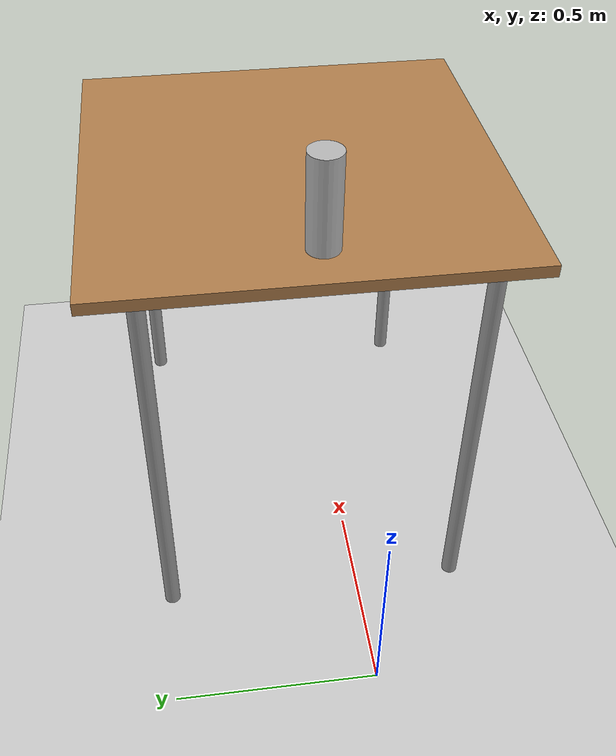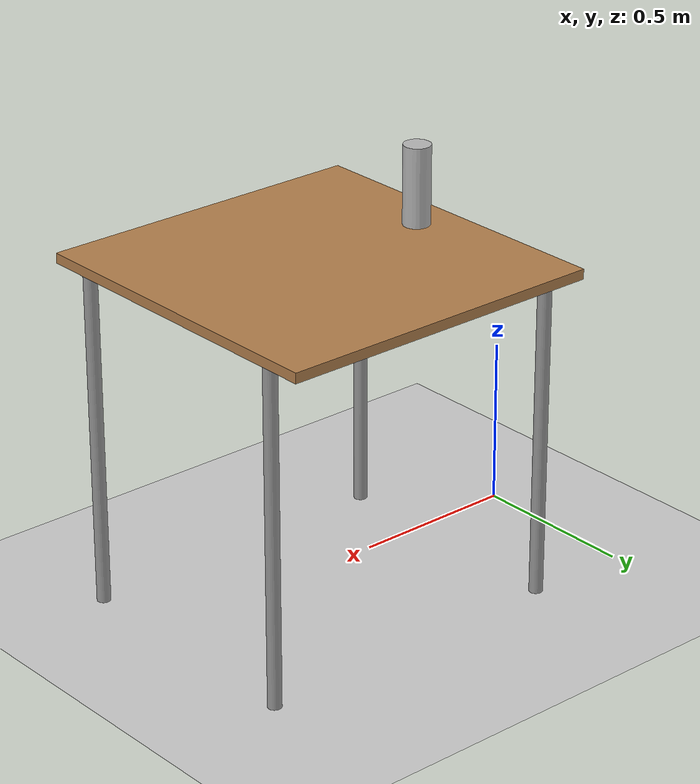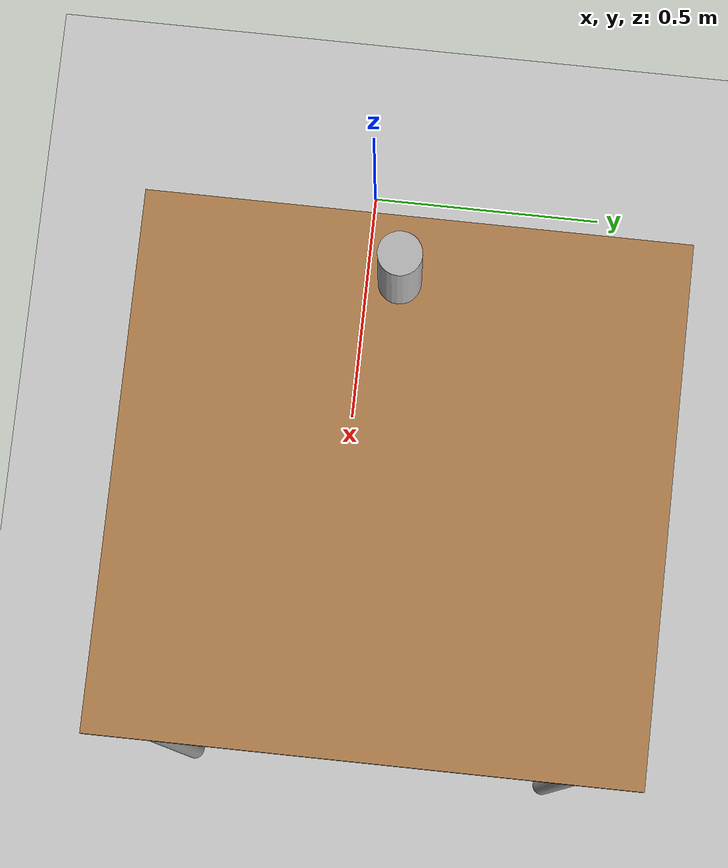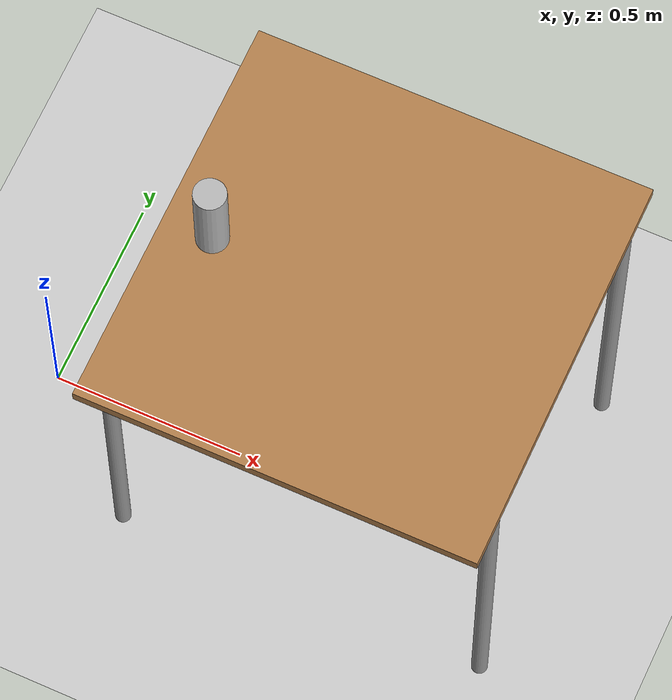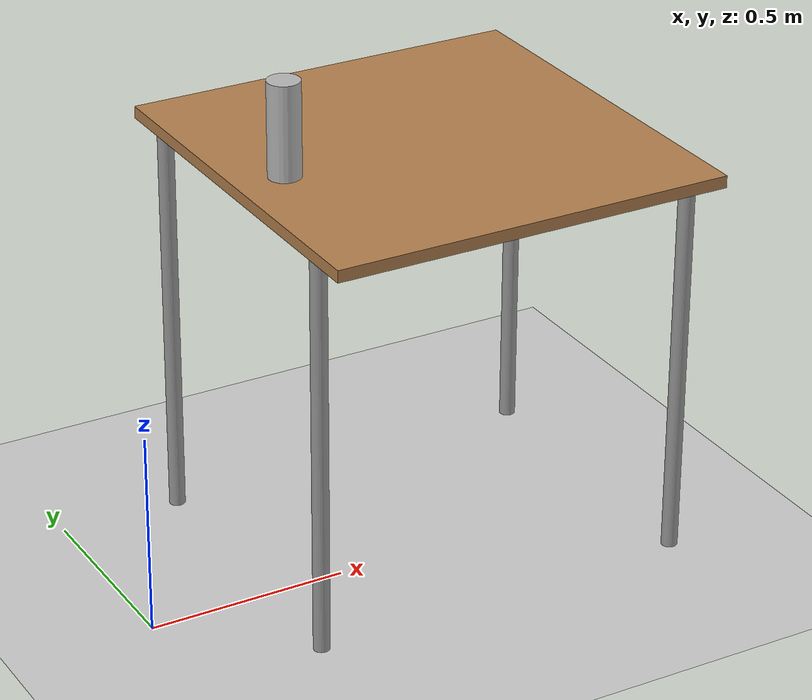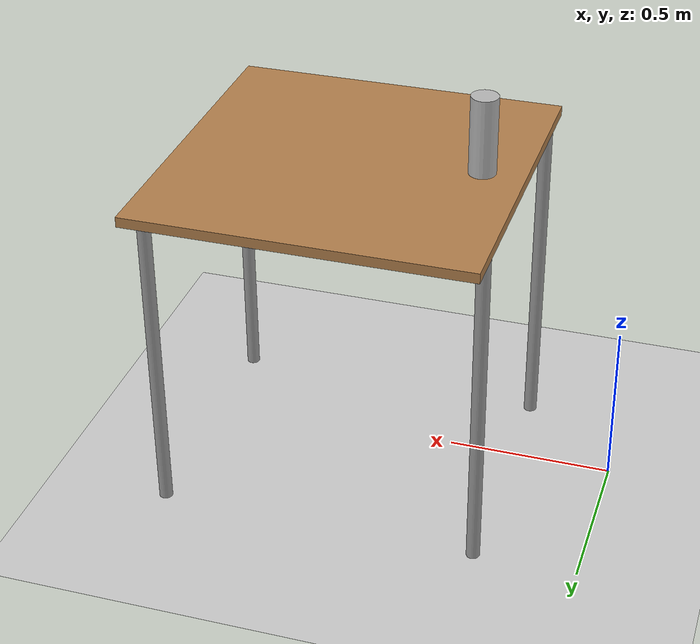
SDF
<sdf version="1.7">
 <world name="default">
  <model name="ground_plane">
   <static>1</static>
   <link name="link">
    <collision name="collision">
     <geometry><plane><normal>0 0 1</normal><size>100 100</size></plane></geometry>
     <surface><friction><ode><mu>100</mu><mu2>50</mu2></ode></friction></surface>
    </collision>
    <visual name="visual">
     <cast_shadows>0</cast_shadows>
     <geometry><plane><normal>0 0 1</normal><size>100 100</size></plane></geometry>
     <material>
      <script><uri>file://media/materials/scripts/gazebo.material</uri><name>Gazebo/Grey</name></script>
     </material>
    </visual>
    <velocity_decay><linear>0</linear><angular>0</angular></velocity_decay>
   </link>
  </model>
  <model name="table_1m">
   <static>1</static>
   <link name="link">
    <collision name="surface">
     <pose>0 0 1.01 0 -0 0</pose>
     <geometry><box><size>1 1.01 0.03</size></box></geometry>
    </collision>
    <visual name="visual1">
     <pose>0 0 1.01 0 -0 0</pose>
     <geometry><box><size>1 1.01 0.03</size></box></geometry>
     <material>
      <script><uri>file://media/materials/scripts/gazebo.material</uri><name>Gazebo/Wood</name></script>
     </material>
    </visual>
    <collision name="front_left_leg">
     <pose>0.48 0.38 0.5005 0 -0 0</pose>
     <geometry><cylinder><radius>0.02</radius><length>1.01</length></cylinder></geometry>
    </collision>
    <visual name="front_left_leg">
     <pose>0.48 0.38 0.5005 0 -0 0</pose>
     <geometry><cylinder><radius>0.02</radius><length>1.01</length></cylinder></geometry>
     <material>
      <script><uri>file://media/materials/scripts/gazebo.material</uri><name>Gazebo/Grey</name></script>
     </material>
    </visual>
    <collision name="front_right_leg">
     <pose>0.48 -0.38 0.5005 0 -0 0</pose>
     <geometry><cylinder><radius>0.02</radius><length>1.01</length></cylinder></geometry>
    </collision>
    <visual name="front_right_leg">
     <pose>0.48 -0.38 0.5005 0 -0 0</pose>
     <geometry><cylinder><radius>0.02</radius><length>1.01</length></cylinder></geometry>
     <material>
      <script><uri>file://media/materials/scripts/gazebo.material</uri><name>Gazebo/Grey</name></script>
     </material>
    </visual>
    <collision name="back_right_leg">
     <pose>-0.48 -0.38 0.5005 0 -0 0</pose>
     <geometry><cylinder><radius>0.02</radius><length>1.01</length></cylinder></geometry>
    </collision>
    <visual name="back_right_leg">
     <pose>-0.48 -0.38 0.5005 0 -0 0</pose>
     <geometry><cylinder><radius>0.02</radius><length>1.01</length></cylinder></geometry>
     <material>
      <script><uri>file://media/materials/scripts/gazebo.material</uri><name>Gazebo/Grey</name></script>
     </material>
    </visual>
    <collision name="back_left_leg">
     <pose>-0.48 0.38 0.5005 0 -0 0</pose>
     <geometry><cylinder><radius>0.02</radius><length>1.01</length></cylinder></geometry>
    </collision>
    <visual name="back_left_leg">
     <pose>-0.48 0.38 0.5005 0 -0 0</pose>
     <geometry><cylinder><radius>0.02</radius><length>1.01</length></cylinder></geometry>
     <material>
      <script><uri>file://media/materials/scripts/gazebo.material</uri><name>Gazebo/Grey</name></script>
     </material>
    </visual>
    <velocity_decay><linear>0</linear><angular>0</angular></velocity_decay>
   </link>
   <pose>0.785358 0.116943 0 0 -0 0</pose>
  </model>
  <model name="pringles">
   <static>0</static>
   <link name="link">
    <inertial>
     <mass>0.25</mass>
     <inertia><ixx>0</ixx><ixy>0</ixy><ixz>0</ixz><iyy>0</iyy><iyz>0</iyz><izz>0</izz></inertia>
    </inertial>
    <collision name="collision">
     <geometry><cylinder><radius>0.04</radius><length>0.235</length></cylinder></geometry>
    </collision>
    <visual name="visual">
     <geometry><cylinder><radius>0.04</radius><length>0.235</length></cylinder></geometry>
     <material>
      <script>
       <uri>model://pringles/material/scripts</uri>
       <uri>model://pringles/material/textures</uri>
       <name>Custom/pringles</name>
      </script>
     </material>
    </visual>
    <velocity_decay><linear>0</linear><angular>0</angular></velocity_decay>
   </link>
   <pose>0.411174 0.09388 1.14251 0.000201 -0.000405 -3.9e-05</pose>
  </model>
 </world>
</sdf>
